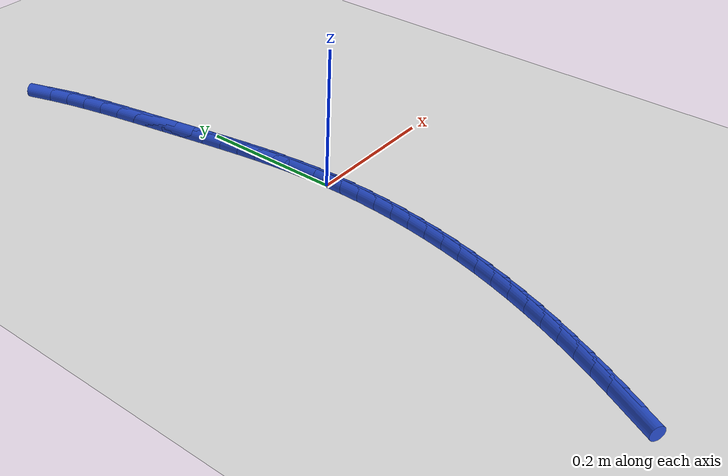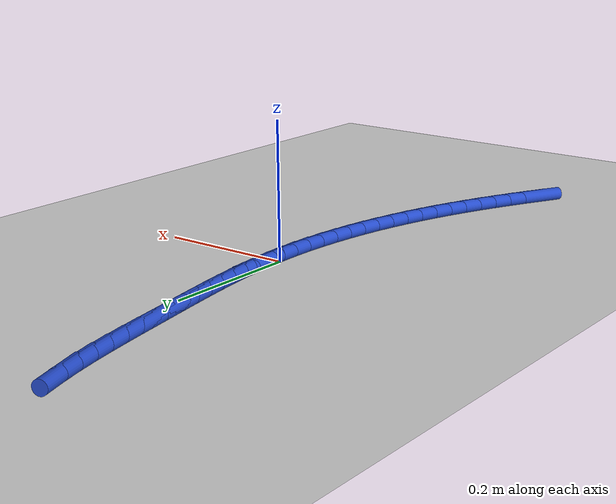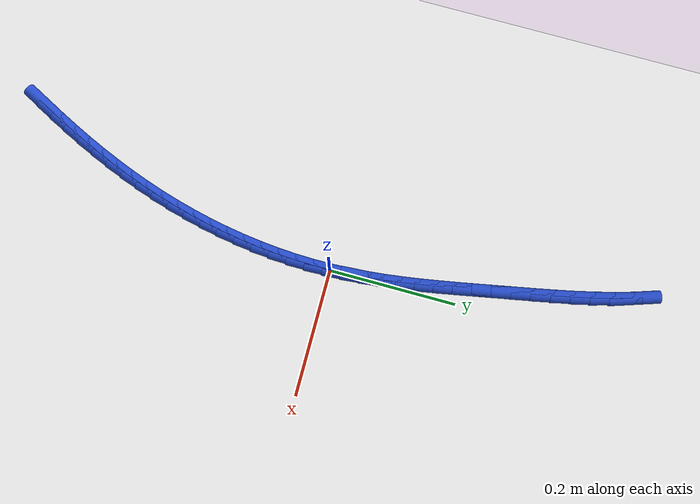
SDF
<sdf version="1.6">
 <world name="default">
  <model name="ground_plane">
   <static>1</static>
   <link name="link">
    <collision name="collision">
     <geometry><plane><normal>0 0 1</normal><size>100 100</size></plane></geometry>
     <surface><friction><ode><mu>100</mu><mu2>50</mu2></ode></friction></surface>
    </collision>
    <visual name="visual">
     <cast_shadows>0</cast_shadows>
     <geometry><plane><normal>0 0 1</normal><size>100 100</size></plane></geometry>
     <material>
      <script><uri>file://media/materials/scripts/gazebo.material</uri><name>Gazebo/WhiteGlow</name></script>
     </material>
    </visual>
   </link>
  </model>
  <model name="line">
   <link name="link_0">
    <pose>-9.540979117872439e-18 -3.469446951953614e-17 0.01 0 1.57 -1.5294506513139627</pose>
    <collision name="collision">
     <geometry><cylinder><radius>0.01</radius><length>0.08</length></cylinder></geometry>
    </collision>
    <visual name="visual">
     <material>
      <script><name>Gazebo/Blue</name><uri>file://media/materials/scripts/gazebo.material</uri></script>
     </material>
     <geometry><cylinder><radius>0.01</radius><length>0.08</length></cylinder></geometry>
    </visual>
   </link>
   <link name="link_1">
    <pose>-0.0011748895653462578 0.02840006839639357 0.01 0 1.57 -1.496737372242825</pose>
    <collision name="collision">
     <geometry><cylinder><radius>0.01</radius><length>0.08</length></cylinder></geometry>
    </collision>
    <visual name="visual">
     <material>
      <script><name>Gazebo/Blue</name><uri>file://media/materials/scripts/gazebo.material</uri></script>
     </material>
     <geometry><cylinder><radius>0.01</radius><length>0.08</length></cylinder></geometry>
    </visual>
   </link>
   <link name="link_2">
    <pose>-0.0032738883289255174 0.05669050123774084 0.01 0 1.57 -1.468017511361112</pose>
    <collision name="collision">
     <geometry><cylinder><radius>0.01</radius><length>0.08</length></cylinder></geometry>
    </collision>
    <visual name="visual">
     <material>
      <script><name>Gazebo/Blue</name><uri>file://media/materials/scripts/gazebo.material</uri></script>
     </material>
     <geometry><cylinder><radius>0.01</radius><length>0.08</length></cylinder></geometry>
    </visual>
   </link>
   <link name="link_3">
    <pose>-0.006186115220526333 0.08492555365573844 0.01 0 1.57 -1.4434665865896867</pose>
    <collision name="collision">
     <geometry><cylinder><radius>0.01</radius><length>0.08</length></cylinder></geometry>
    </collision>
    <visual name="visual">
     <material>
      <script><name>Gazebo/Blue</name><uri>file://media/materials/scripts/gazebo.material</uri></script>
     </material>
     <geometry><cylinder><radius>0.01</radius><length>0.08</length></cylinder></geometry>
    </visual>
   </link>
   <link name="link_4">
    <pose>-0.009800689169937243 0.11315948078208297 0.01 0 1.57 -1.4231865035075302</pose>
    <collision name="collision">
     <geometry><cylinder><radius>0.01</radius><length>0.08</length></cylinder></geometry>
    </collision>
    <visual name="visual">
     <material>
      <script><name>Gazebo/Blue</name><uri>file://media/materials/scripts/gazebo.material</uri></script>
     </material>
     <geometry><cylinder><radius>0.01</radius><length>0.08</length></cylinder></geometry>
    </visual>
   </link>
   <link name="link_5">
    <pose>-0.01400672910694679 0.14144653774847116 0.01 0 1.57 -1.4072168435810375</pose>
    <collision name="collision">
     <geometry><cylinder><radius>0.01</radius><length>0.08</length></cylinder></geometry>
    </collision>
    <visual name="visual">
     <material>
      <script><name>Gazebo/Blue</name><uri>file://media/materials/scripts/gazebo.material</uri></script>
     </material>
     <geometry><cylinder><radius>0.01</radius><length>0.08</length></cylinder></geometry>
    </visual>
   </link>
   <link name="link_6">
    <pose>-0.018693353961343515 0.16984097968659945 0.01 0 1.57 -1.3955461636745663</pose>
    <collision name="collision">
     <geometry><cylinder><radius>0.01</radius><length>0.08</length></cylinder></geometry>
    </collision>
    <visual name="visual">
     <material>
      <script><name>Gazebo/Blue</name><uri>file://media/materials/scripts/gazebo.material</uri></script>
     </material>
     <geometry><cylinder><radius>0.01</radius><length>0.08</length></cylinder></geometry>
    </visual>
   </link>
   <link name="link_7">
    <pose>-0.02374968266291596 0.19839706172816468 0.01 0 1.57 -1.3881221389597653</pose>
    <collision name="collision">
     <geometry><cylinder><radius>0.01</radius><length>0.08</length></cylinder></geometry>
    </collision>
    <visual name="visual">
     <material>
      <script><name>Gazebo/Blue</name><uri>file://media/materials/scripts/gazebo.material</uri></script>
     </material>
     <geometry><cylinder><radius>0.01</radius><length>0.08</length></cylinder></geometry>
    </visual>
   </link>
   <link name="link_8">
    <pose>-0.02906483414145267 0.22716903900486332 0.01 0 1.57 -1.3848598721502252</pose>
    <collision name="collision">
     <geometry><cylinder><radius>0.01</radius><length>0.08</length></cylinder></geometry>
    </collision>
    <visual name="visual">
     <material>
      <script><name>Gazebo/Blue</name><uri>file://media/materials/scripts/gazebo.material</uri></script>
     </material>
     <geometry><cylinder><radius>0.01</radius><length>0.08</length></cylinder></geometry>
    </visual>
   </link>
   <link name="link_9">
    <pose>-0.034527927326742196 0.25621116664839216 0.01 0 1.57 -1.385393767877527</pose>
    <collision name="collision">
     <geometry><cylinder><radius>0.01</radius><length>0.08</length></cylinder></geometry>
    </collision>
    <visual name="visual">
     <material>
      <script><name>Gazebo/Blue</name><uri>file://media/materials/scripts/gazebo.material</uri></script>
     </material>
     <geometry><cylinder><radius>0.01</radius><length>0.08</length></cylinder></geometry>
    </visual>
   </link>
   <link name="link_10">
    <pose>-0.04003479357177395 0.28557226788144513 0.01 0 1.57 -1.3846859534579163</pose>
    <collision name="collision">
     <geometry><cylinder><radius>0.01</radius><length>0.08</length></cylinder></geometry>
    </collision>
    <visual name="visual">
     <material>
      <script><name>Gazebo/Blue</name><uri>file://media/materials/scripts/gazebo.material</uri></script>
     </material>
     <geometry><cylinder><radius>0.01</radius><length>0.08</length></cylinder></geometry>
    </visual>
   </link>
   <link name="link_11">
    <pose>-0.0456124408212615 0.3151950136046437 0.01 0 1.57 -1.3782954925352733</pose>
    <collision name="collision">
     <geometry><cylinder><radius>0.01</radius><length>0.08</length></cylinder></geometry>
    </collision>
    <visual name="visual">
     <material>
      <script><name>Gazebo/Blue</name><uri>file://media/materials/scripts/gazebo.material</uri></script>
     </material>
     <geometry><cylinder><radius>0.01</radius><length>0.08</length></cylinder></geometry>
    </visual>
   </link>
   <link name="link_12">
    <pose>-0.05140732464027866 0.34492541385785136 0.01 0 1.57 -1.3660632757519449</pose>
    <collision name="collision">
     <geometry><cylinder><radius>0.01</radius><length>0.08</length></cylinder></geometry>
    </collision>
    <visual name="visual">
     <material>
      <script><name>Gazebo/Blue</name><uri>file://media/materials/scripts/gazebo.material</uri></script>
     </material>
     <geometry><cylinder><radius>0.01</radius><length>0.08</length></cylinder></geometry>
    </visual>
   </link>
   <link name="link_13">
    <pose>-0.05757026076933132 0.3746059502865687 0.01 0 1.57 -1.3478566417226272</pose>
    <collision name="collision">
     <geometry><cylinder><radius>0.01</radius><length>0.08</length></cylinder></geometry>
    </collision>
    <visual name="visual">
     <material>
      <script><name>Gazebo/Blue</name><uri>file://media/materials/scripts/gazebo.material</uri></script>
     </material>
     <geometry><cylinder><radius>0.01</radius><length>0.08</length></cylinder></geometry>
    </visual>
   </link>
   <link name="link_14">
    <pose>-0.06425206494892545 0.40407910453629703 0.01 0 1.57 -1.3234126970885531</pose>
    <collision name="collision">
     <geometry><cylinder><radius>0.01</radius><length>0.08</length></cylinder></geometry>
    </collision>
    <visual name="visual">
     <material>
      <script><name>Gazebo/Blue</name><uri>file://media/materials/scripts/gazebo.material</uri></script>
     </material>
     <geometry><cylinder><radius>0.01</radius><length>0.08</length></cylinder></geometry>
    </visual>
   </link>
   <link name="link_15">
    <pose>-0.07160355291956694 0.43318735825253707 0.01 0 1.57 -1.2923477020681833</pose>
    <collision name="collision">
     <geometry><cylinder><radius>0.01</radius><length>0.08</length></cylinder></geometry>
    </collision>
    <visual name="visual">
     <material>
      <script><name>Gazebo/Blue</name><uri>file://media/materials/scripts/gazebo.material</uri></script>
     </material>
     <geometry><cylinder><radius>0.01</radius><length>0.08</length></cylinder></geometry>
    </visual>
   </link>
   <link name="link_16">
    <pose>-0.0797755404217617 0.46177319308078957 0.01 0 1.57 -1.2541715530515547</pose>
    <collision name="collision">
     <geometry><cylinder><radius>0.01</radius><length>0.08</length></cylinder></geometry>
    </collision>
    <visual name="visual">
     <material>
      <script><name>Gazebo/Blue</name><uri>file://media/materials/scripts/gazebo.material</uri></script>
     </material>
     <geometry><cylinder><radius>0.01</radius><length>0.08</length></cylinder></geometry>
    </visual>
   </link>
   <link name="link_212">
    <pose>-0.13276672320250488 -0.49623329246467124 0.01 0 1.57 1.085980403191419</pose>
    <collision name="collision">
     <geometry><cylinder><radius>0.01</radius><length>0.08</length></cylinder></geometry>
    </collision>
    <visual name="visual">
     <material>
      <script><name>Gazebo/Blue</name><uri>file://media/materials/scripts/gazebo.material</uri></script>
     </material>
     <geometry><cylinder><radius>0.01</radius><length>0.08</length></cylinder></geometry>
    </visual>
   </link>
   <link name="link_213">
    <pose>-0.1193719093098175 -0.4708040038702839 0.01 0 1.57 1.1051524055376332</pose>
    <collision name="collision">
     <geometry><cylinder><radius>0.01</radius><length>0.08</length></cylinder></geometry>
    </collision>
    <visual name="visual">
     <material>
      <script><name>Gazebo/Blue</name><uri>file://media/materials/scripts/gazebo.material</uri></script>
     </material>
     <geometry><cylinder><radius>0.01</radius><length>0.08</length></cylinder></geometry>
    </visual>
   </link>
   <link name="link_214">
    <pose>-0.10645023882482582 -0.44508912860146504 0.01 0 1.57 1.1258429679580695</pose>
    <collision name="collision">
     <geometry><cylinder><radius>0.01</radius><length>0.08</length></cylinder></geometry>
    </collision>
    <visual name="visual">
     <material>
      <script><name>Gazebo/Blue</name><uri>file://media/materials/scripts/gazebo.material</uri></script>
     </material>
     <geometry><cylinder><radius>0.01</radius><length>0.08</length></cylinder></geometry>
    </visual>
   </link>
   <link name="link_215">
    <pose>-0.09405073454998912 -0.41908596089487155 0.01 0 1.57 1.1480707938702386</pose>
    <collision name="collision">
     <geometry><cylinder><radius>0.01</radius><length>0.08</length></cylinder></geometry>
    </collision>
    <visual name="visual">
     <material>
      <script><name>Gazebo/Blue</name><uri>file://media/materials/scripts/gazebo.material</uri></script>
     </material>
     <geometry><cylinder><radius>0.01</radius><length>0.08</length></cylinder></geometry>
    </visual>
   </link>
   <link name="link_216">
    <pose>-0.08222241928776758 -0.3927917949871623 0.01 0 1.57 1.1718519039824393</pose>
    <collision name="collision">
     <geometry><cylinder><radius>0.01</radius><length>0.08</length></cylinder></geometry>
    </collision>
    <visual name="visual">
     <material>
      <script><name>Gazebo/Blue</name><uri>file://media/materials/scripts/gazebo.material</uri></script>
     </material>
     <geometry><cylinder><radius>0.01</radius><length>0.08</length></cylinder></geometry>
    </visual>
   </link>
   <link name="link_217">
    <pose>-0.0710143158406206 -0.36620392511499433 0.01 0 1.57 1.197198013573715</pose>
    <collision name="collision">
     <geometry><cylinder><radius>0.01</radius><length>0.08</length></cylinder></geometry>
    </collision>
    <visual name="visual">
     <material>
      <script><name>Gazebo/Blue</name><uri>file://media/materials/scripts/gazebo.material</uri></script>
     </material>
     <geometry><cylinder><radius>0.01</radius><length>0.08</length></cylinder></geometry>
    </visual>
   </link>
   <link name="link_218">
    <pose>-0.06047544701100772 -0.33931964551502514 0.01 0 1.57 1.2241147534957963</pose>
    <collision name="collision">
     <geometry><cylinder><radius>0.01</radius><length>0.08</length></cylinder></geometry>
    </collision>
    <visual name="visual">
     <material>
      <script><name>Gazebo/Blue</name><uri>file://media/materials/scripts/gazebo.material</uri></script>
     </material>
     <geometry><cylinder><radius>0.01</radius><length>0.08</length></cylinder></geometry>
    </visual>
   </link>
   <link name="link_219">
    <pose>-0.05065483560138831 -0.3121362504239114 0.01 0 1.57 1.2525997559966953</pose>
    <collision name="collision">
     <geometry><cylinder><radius>0.01</radius><length>0.08</length></cylinder></geometry>
    </collision>
    <visual name="visual">
     <material>
      <script><name>Gazebo/Blue</name><uri>file://media/materials/scripts/gazebo.material</uri></script>
     </material>
     <geometry><cylinder><radius>0.01</radius><length>0.08</length></cylinder></geometry>
    </visual>
   </link>
   <link name="link_220">
    <pose>-0.04160150441422253 -0.2846510340783123 0.01 0 1.57 1.282616279623061</pose>
    <collision name="collision">
     <geometry><cylinder><radius>0.01</radius><length>0.08</length></cylinder></geometry>
    </collision>
    <visual name="visual">
     <material>
      <script><name>Gazebo/Blue</name><uri>file://media/materials/scripts/gazebo.material</uri></script>
     </material>
     <geometry><cylinder><radius>0.01</radius><length>0.08</length></cylinder></geometry>
    </visual>
   </link>
   <link name="link_221">
    <pose>-0.033363998215627036 -0.25686216297877623 0.01 0 1.57 1.3134969928777323</pose>
    <collision name="collision">
     <geometry><cylinder><radius>0.01</radius><length>0.08</length></cylinder></geometry>
    </collision>
    <visual name="visual">
     <material>
      <script><name>Gazebo/Blue</name><uri>file://media/materials/scripts/gazebo.material</uri></script>
     </material>
     <geometry><cylinder><radius>0.01</radius><length>0.08</length></cylinder></geometry>
    </visual>
   </link>
   <link name="link_222">
    <pose>-0.02597776589875201 -0.2287916994180763 0.01 0 1.57 1.344592763322678</pose>
    <collision name="collision">
     <geometry><cylinder><radius>0.01</radius><length>0.08</length></cylinder></geometry>
    </collision>
    <visual name="visual">
     <material>
      <script><name>Gazebo/Blue</name><uri>file://media/materials/scripts/gazebo.material</uri></script>
     </material>
     <geometry><cylinder><radius>0.01</radius><length>0.08</length></cylinder></geometry>
    </visual>
   </link>
   <link name="link_223">
    <pose>-0.01946387455511531 -0.20048794789097268 0.01 0 1.57 1.3759760740059641</pose>
    <collision name="collision">
     <geometry><cylinder><radius>0.01</radius><length>0.08</length></cylinder></geometry>
    </collision>
    <visual name="visual">
     <material>
      <script><name>Gazebo/Blue</name><uri>file://media/materials/scripts/gazebo.material</uri></script>
     </material>
     <geometry><cylinder><radius>0.01</radius><length>0.08</length></cylinder></geometry>
    </visual>
   </link>
   <link name="link_224">
    <pose>-0.013842655346618021 -0.17200055572911 0.01 0 1.57 1.4077565632619262</pose>
    <collision name="collision">
     <geometry><cylinder><radius>0.01</radius><length>0.08</length></cylinder></geometry>
    </collision>
    <visual name="visual">
     <material>
      <script><name>Gazebo/Blue</name><uri>file://media/materials/scripts/gazebo.material</uri></script>
     </material>
     <geometry><cylinder><radius>0.01</radius><length>0.08</length></cylinder></geometry>
    </visual>
   </link>
   <link name="link_225">
    <pose>-0.009134439435160712 -0.14337917026413083 0.01 0 1.57 1.4400438722103248</pose>
    <collision name="collision">
     <geometry><cylinder><radius>0.01</radius><length>0.08</length></cylinder></geometry>
    </collision>
    <visual name="visual">
     <material>
      <script><name>Gazebo/Blue</name><uri>file://media/materials/scripts/gazebo.material</uri></script>
     </material>
     <geometry><cylinder><radius>0.01</radius><length>0.08</length></cylinder></geometry>
    </visual>
   </link>
   <link name="link_226">
    <pose>-0.005359557982644132 -0.11467343882767839 0.01 0 1.57 1.4729478835751777</pose>
    <collision name="collision">
     <geometry><cylinder><radius>0.01</radius><length>0.08</length></cylinder></geometry>
    </collision>
    <visual name="visual">
     <material>
      <script><name>Gazebo/Blue</name><uri>file://media/materials/scripts/gazebo.material</uri></script>
     </material>
     <geometry><cylinder><radius>0.01</radius><length>0.08</length></cylinder></geometry>
    </visual>
   </link>
   <link name="link_227">
    <pose>-0.002538342150969023 -0.0859330087513959 0.01 0 1.57 1.5065788091350165</pose>
    <collision name="collision">
     <geometry><cylinder><radius>0.01</radius><length>0.08</length></cylinder></geometry>
    </collision>
    <visual name="visual">
     <material>
      <script><name>Gazebo/Blue</name><uri>file://media/materials/scripts/gazebo.material</uri></script>
     </material>
     <geometry><cylinder><radius>0.01</radius><length>0.08</length></cylinder></geometry>
    </visual>
   </link>
   <link name="link_228">
    <pose>-0.000691123102036098 -0.05720752736692593 0.01 0 1.57 1.5410470894297688</pose>
    <collision name="collision">
     <geometry><cylinder><radius>0.01</radius><length>0.08</length></cylinder></geometry>
    </collision>
    <visual name="visual">
     <material>
      <script><name>Gazebo/Blue</name><uri>file://media/materials/scripts/gazebo.material</uri></script>
     </material>
     <geometry><cylinder><radius>0.01</radius><length>0.08</length></cylinder></geometry>
    </visual>
   </link>
   <link name="link_229">
    <pose>0.00016176800225379748 -0.028546642005913156 0.01 0 1.57 -1.565129591258796</pose>
    <collision name="collision">
     <geometry><cylinder><radius>0.01</radius><length>0.08</length></cylinder></geometry>
    </collision>
    <visual name="visual">
     <material>
      <script><name>Gazebo/Blue</name><uri>file://media/materials/scripts/gazebo.material</uri></script>
     </material>
     <geometry><cylinder><radius>0.01</radius><length>0.08</length></cylinder></geometry>
    </visual>
   </link>
   <link name="link_230">
    <pose>-1.5612511283791264e-17 -7.632783294297951e-17 0.01 0 1.57 -1.5286563038061656</pose>
    <collision name="collision">
     <geometry><cylinder><radius>0.01</radius><length>0.08</length></cylinder></geometry>
    </collision>
    <visual name="visual">
     <material>
      <script><name>Gazebo/Blue</name><uri>file://media/materials/scripts/gazebo.material</uri></script>
     </material>
     <geometry><cylinder><radius>0.01</radius><length>0.08</length></cylinder></geometry>
    </visual>
   </link>
   <link name="link_231">
    <pose>-0.0011967582706982867 0.02838275131917003 0.01 0 1.57 -1.4910177483104212</pose>
    <collision name="collision">
     <geometry><cylinder><radius>0.01</radius><length>0.08</length></cylinder></geometry>
    </collision>
    <visual name="visual">
     <material>
      <script><name>Gazebo/Blue</name><uri>file://media/materials/scripts/gazebo.material</uri></script>
     </material>
     <geometry><cylinder><radius>0.01</radius><length>0.08</length></cylinder></geometry>
    </visual>
   </link>
   <link name="link_232">
    <pose>-0.003448837971741763 0.05655196461995399 0.01 0 1.57 -1.5098864739724795</pose>
    <collision name="collision">
     <geometry><cylinder><radius>0.01</radius><length>0.08</length></cylinder></geometry>
    </collision>
    <visual name="visual">
     <material>
      <script><name>Gazebo/Blue</name><uri>file://media/materials/scripts/gazebo.material</uri></script>
     </material>
     <geometry><cylinder><radius>0.01</radius><length>0.08</length></cylinder></geometry>
    </visual>
   </link>
  </model>
 </world>
</sdf>
